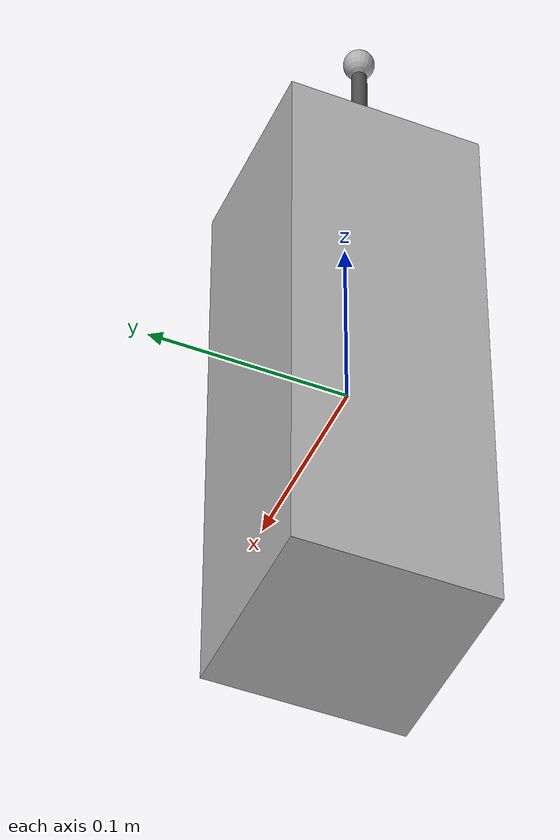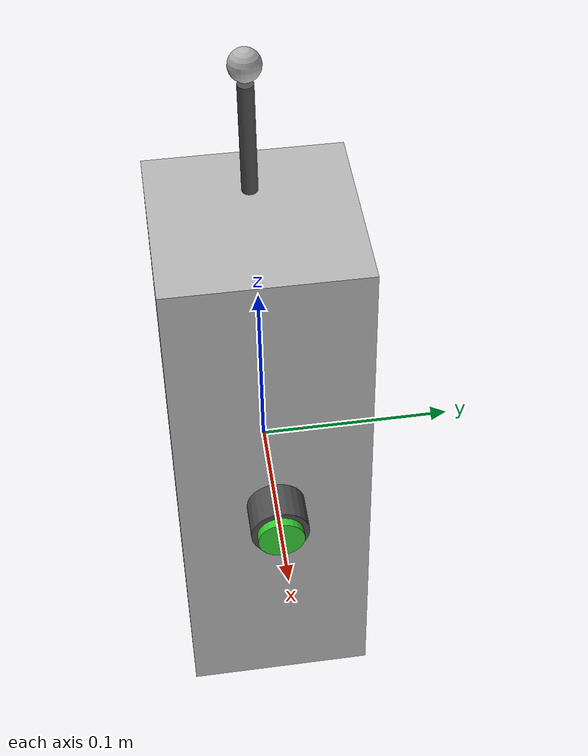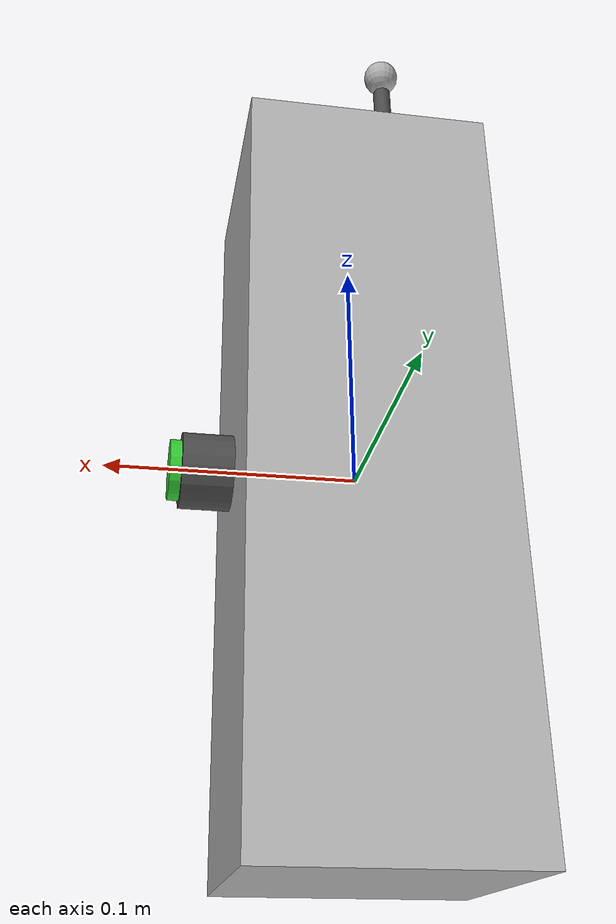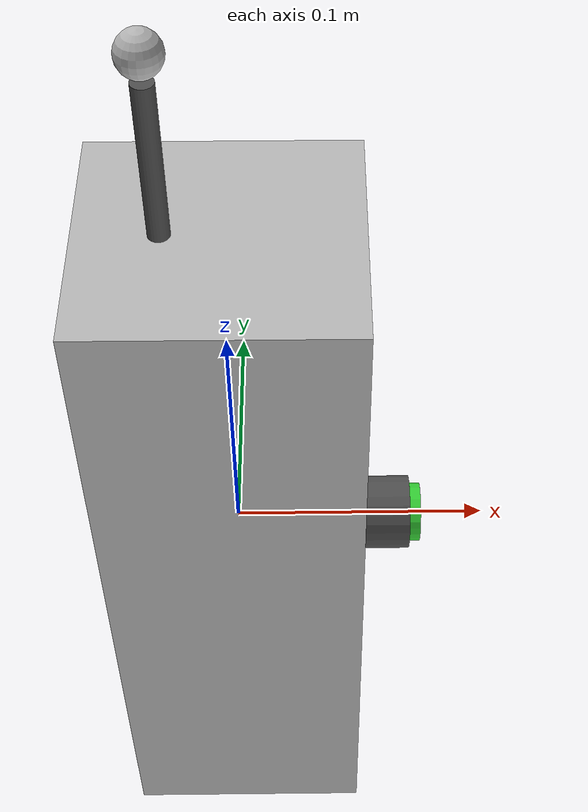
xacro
<?xml version="1.0"?>
<robot xmlns:xacro="http://www.ros.org/wiki/xacro" name="target_satellite">

  <!-- Properties - 3U CubeSat size (10cm x 10cm x 30cm) scaled for visualization -->
  <xacro:property name="cubesat_unit" value="0.1"/>  <!-- 10cm = 1U -->
  <xacro:property name="satellite_mass" value="5.0"/>  <!-- 5kg for 3U CubeSat -->
  <xacro:property name="satellite_size_x" value="${cubesat_unit}"/>
  <xacro:property name="satellite_size_y" value="${cubesat_unit}"/>
  <xacro:property name="satellite_size_z" value="${3*cubesat_unit}"/>  <!-- 3U = 30cm -->

  <!-- Materials -->
  <material name="silver">
    <color rgba="0.7 0.7 0.7 1.0"/>
  </material>
  <material name="dark_grey">
    <color rgba="0.3 0.3 0.3 1.0"/>
  </material>
  <material name="solar_blue">
    <color rgba="0.1 0.2 0.5 1.0"/>
  </material>
  <material name="docking_green">
    <color rgba="0.2 0.8 0.2 1.0"/>
  </material>
  <material name="target_orange">
    <color rgba="1.0 0.5 0.0 1.0"/>
  </material>

  <!-- Dummy root link for KDL (no inertia) -->
  <link name="target_dummy_root"/>

  <joint name="target_dummy_to_base" type="fixed">
    <parent link="target_dummy_root"/>
    <child link="target_base_link"/>
    <origin xyz="0 0 0" rpy="0 0 0"/>
  </joint>

  <!-- Base link (satellite body - 3U CubeSat) -->
  <link name="target_base_link">
    <visual>
      <origin xyz="0 0 0" rpy="0 0 0"/>
      <geometry>
        <box size="${satellite_size_x} ${satellite_size_y} ${satellite_size_z}"/>
      </geometry>
      <material name="silver"/>
    </visual>
    <collision>
      <origin xyz="0 0 0" rpy="0 0 0"/>
      <geometry>
        <box size="${satellite_size_x} ${satellite_size_y} ${satellite_size_z}"/>
      </geometry>
    </collision>
    <inertial>
      <origin xyz="0 0 0" rpy="0 0 0"/>
      <mass value="${satellite_mass}"/>
      <inertia ixx="${satellite_mass*(satellite_size_y*satellite_size_y+satellite_size_z*satellite_size_z)/12}"
               ixy="0" ixz="0"
               iyy="${satellite_mass*(satellite_size_x*satellite_size_x+satellite_size_z*satellite_size_z)/12}"
               iyz="0"
               izz="${satellite_mass*(satellite_size_x*satellite_size_x+satellite_size_y*satellite_size_y)/12}"/>
    </inertial>
  </link>

  <!-- Solar panels removed - disabled debris satellite -->

  <!-- Magnetic Docking Port (Target side) -->

  <!-- Docking port structure (scaled for 3U CubeSat) -->
  <link name="docking_port">
    <visual>
      <origin xyz="0 0 0" rpy="0 0 0"/>
      <geometry>
        <cylinder radius="0.015" length="0.02"/>
      </geometry>
      <material name="dark_grey"/>
    </visual>
    <collision>
      <origin xyz="0 0 0" rpy="0 0 0"/>
      <geometry>
        <cylinder radius="0.015" length="0.02"/>
      </geometry>
    </collision>
    <inertial>
      <mass value="0.1"/>
      <inertia ixx="0.00001" ixy="0" ixz="0" iyy="0.00001" iyz="0" izz="0.00001"/>
    </inertial>
  </link>

  <joint name="docking_port_joint" type="fixed">
    <parent link="target_base_link"/>
    <child link="docking_port"/>
    <origin xyz="${satellite_size_x/2 + 0.01} 0 0" rpy="0 ${pi/2} 0"/>
  </joint>

  <!-- Magnetic contact surface -->
  <link name="magnetic_contact_surface">
    <visual>
      <origin xyz="0 0 0" rpy="0 0 0"/>
      <geometry>
        <cylinder radius="0.012" length="0.005"/>
      </geometry>
      <material name="docking_green"/>
    </visual>
    <collision>
      <origin xyz="0 0 0" rpy="0 0 0"/>
      <geometry>
        <cylinder radius="0.012" length="0.005"/>
      </geometry>
    </collision>
    <inertial>
      <mass value="0.02"/>
      <inertia ixx="0.000001" ixy="0" ixz="0" iyy="0.000001" iyz="0" izz="0.000001"/>
    </inertial>
  </link>

  <joint name="magnetic_surface_joint" type="fixed">
    <parent link="docking_port"/>
    <child link="magnetic_contact_surface"/>
    <origin xyz="0 0 0.012" rpy="0 0 0"/>
  </joint>

  <!-- Antenna (scaled for 3U CubeSat) -->
  <link name="target_antenna">
    <visual>
      <origin xyz="0 0 0.03" rpy="0 0 0"/>
      <geometry>
        <cylinder radius="0.004" length="0.06"/>
      </geometry>
      <material name="dark_grey"/>
    </visual>
    <visual>
      <origin xyz="0 0 0.07" rpy="0 0 0"/>
      <geometry>
        <sphere radius="0.008"/>
      </geometry>
      <material name="silver"/>
    </visual>
    <collision>
      <origin xyz="0 0 0.04" rpy="0 0 0"/>
      <geometry>
        <cylinder radius="0.01" length="0.08"/>
      </geometry>
    </collision>
    <inertial>
      <mass value="0.02"/>
      <inertia ixx="0.000001" ixy="0" ixz="0" iyy="0.000001" iyz="0" izz="0.000001"/>
    </inertial>
  </link>

  <joint name="target_antenna_joint" type="fixed">
    <parent link="target_base_link"/>
    <child link="target_antenna"/>
    <origin xyz="-0.02 0 ${satellite_size_z/2}" rpy="0 0 0"/>
  </joint>

  <!-- Gazebo Properties -->

  <gazebo reference="target_base_link">
    <material>Gazebo/Orange</material>
  </gazebo>
  <!-- Solar panels removed -->
  <gazebo reference="docking_port">
    <material>Gazebo/DarkGrey</material>
  </gazebo>
  <gazebo reference="magnetic_contact_surface">
    <material>Gazebo/Green</material>
  </gazebo>
  <gazebo reference="target_antenna">
    <material>Gazebo/Grey</material>
  </gazebo>

</robot>
